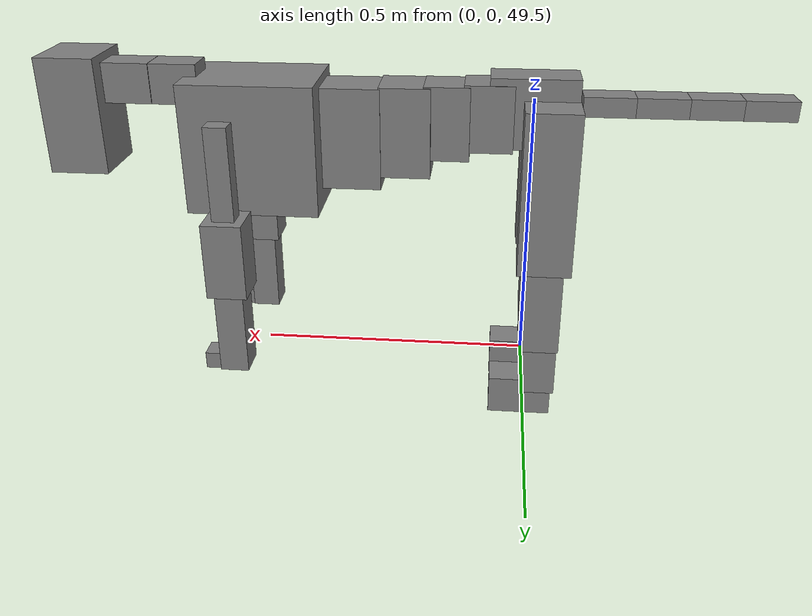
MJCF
<mujoco model="dog">

    <default>
        <joint armature="0.02" stiffness="1" damping="0.2" limited="true"/>
        <geom condim="3" friction="1 0.05 0.05" margin="0.01"/>
        <motor ctrllimited="true" ctrlrange="-1.0 1.0" forcelimited="true" gear="50"/>
    </default>

    <compiler inertiafromgeom="true" angle="radian"/>

    <option timestep="0.016" iterations="50" tolerance="1e-10" solver="Newton" jacobian="dense" cone="pyramidal"/>

    <size nconmax="20000" njmax="60000" nstack="5000000"/>
    <visual>
        <map force="0.1" zfar="30"/>
        <rgba haze="0.15 0.25 0.35 1"/>
        <quality shadowsize="2048"/>
        <global offwidth="800" offheight="800"/>
    </visual>

    <asset>
        <texture type="skybox" builtin="gradient" rgb1="0.3 0.5 0.7" rgb2="0 0 0" width="512" height="512"/>
        <texture name="texplane" type="2d" builtin="checker" rgb1=".2 .3 .4" rgb2=".1 0.15 0.2" width="512" height="512"
                 mark="cross" markrgb=".8 .8 .8"/>
        <texture name="texgeom" type="cube" builtin="flat" mark="cross" width="127" height="1278" rgb1="0.8 0.6 0.4"
                 rgb2="0.8 0.6 0.4" markrgb="1 1 1" random="0.01"/>

        <material name="matplane" reflectance="0.3" texture="texplane" texrepeat="1 1" texuniform="true"/>
        <material name="matgeom" texture="texgeom" texuniform="true" rgba="0.8 0.6 .4 1"/>
    </asset>

    <worldbody>
        <geom name="floor" pos="0 0 0" size="0 0 .25" type="plane" material="matplane" condim="3"/>

        <light directional="false" diffuse=".2 .2 .2" specular="0 0 0" pos="0 0 5" dir="0 0 -1" castshadow="false"/>
        <light mode="targetbodycom" target="torso" directional="false" diffuse=".8 .8 .8" specular="0.3 0.3 0.3"
               pos="0 0 4.0" dir="0 0 -1"/>

        <body name="root" pos="0 0 50">
            <freejoint name="root_1"/>
            <geom type="box" pos="0 0 -0.02" size="0.0774  0.0358  0.063" density="2030"/>

            <body name="spine1" pos="0.054 0 0">
                <joint name="spine1_y" axis="0 1 0" range="0 0.7" limited="true"/>
                <geom type="box" pos="0.02375 0 -0.03" size="0.04375  0.0375  0.05985" density="2030"/>

                <body name="spine2" pos="0.0612 0 0">
                    <joint name="spine2_y" axis="0 1 0" range="-0.15 0.15" limited="true"/>
                    <geom type="box" pos="0.03555  0  -0.04" size="0.04055  0.039  0.06615" density="2030"/>

                    <body name="spine3" pos="0.0730 0 0">
                        <joint name="spine3_y" axis="0 1 0" range="-0.15 0.15" limited="true"/>
                        <geom type="box" pos="0.03555  0  -0.057" size="0.04555  0.0445  0.081" density="2030"/>

                        <body name="spine4" pos="0.0780 0 0">
                            <joint name="spine4_y" axis="0 1 0" range="-0.15 0.15" limited="true"/>
                            <geom type="box" pos="0.05265  0  -0.07" size="0.05265  0.045  0.09135" density="2030"/>

                            <body name="torso" pos="0.1082 0 0">
                                <joint name="torso_y" axis="0 1 0" range="-0.15 0.15" limited="true"/>
                                <geom type="box" pos="0.11925  0  -0.085" size="0.11925  0.085  0.11745"
                                      density="2030"/>

                                <body name="neck1" pos="0.2160  0   0.0180">
                                    <joint name="neck1_y" axis="0 1 0" range="-1.2  -1" limited="true"/>
                                    <geom type="box" pos="0.0423  0  0" size="0.0423  0.03  0.036" density="2325"/>

                                    <body name="neck2" pos="0.0853  0  0">
                                        <joint name="neck2_y" axis="0 1 0" range="0.1  0" limited="true"/>
                                        <geom type="box" pos="0.0423  0  0" size="0.0423  0.03  0.036" density="2325"/>

                                        <body name="head" pos="0.0853  0  0">
                                            <joint name="head_y" axis="0 1 0" range="-0.3  -0.2" limited="true"/>
                                            <geom type="box" pos="0.0531  0  -0.055" size="0.0531  0.06  0.1044"
                                                  density="4030"/>

                                        </body>
                                    </body>
                                </body>

                                <body name="front_shoulder" pos="0.156  0   -0.0480">
                                    <joint name="front_shoulder_y" axis="0 1 0" range="-1 1.5" limited="true"/>
                                    <geom type="box" pos="0 0.13 -0.0716" size="0.0202  0.0172  0.0982" density="1158"/>
                                    <geom type="box" pos="0 -0.13 -0.0716" size="0.0202  0.0172  0.0982"
                                          density="1158"/>

                                    <body name="front_elbow" pos="0  0  -0.1431">
                                        <joint name="front_elbow_y" axis="0 1 0" range="-2 0" limited="true"/>
                                        <geom type="box" pos="0 0.13 -0.0701" size="0.0360  0.0368  0.0701"
                                              density="1081"/>
                                        <geom type="box" pos="0 -0.13 -0.0701" size="0.0360  0.0368  0.0701"
                                              density="1081"/>

                                        <body name="front_wrist" pos="0  0  -0.1403">
                                            <joint name="front_wrist_y" axis="0 1 0" range="-0.2 0" limited="true"/>
                                            <geom type="box" pos="0 0.13 -0.0699" size="0.0260  0.0289  0.0830"
                                                  density="1664"/>
                                            <geom type="box" pos="0 -0.13 -0.0699" size="0.0260  0.0289  0.0830"
                                                  density="1664"/>

                                            <body name="front_finger_end" pos="0  0  -0.1397">
                                                <joint name="front_finger_y" axis="0 1 0" range="-0.4 1"
                                                       limited="true"/>
                                                <geom type="box" pos="0.0198  0.13  -0.0005"
                                                      size="0.0362  0.0198  0.0155" density="1515"/>
                                                <geom type="box" pos="0.0198  -0.13  -0.0005"
                                                      size="0.0362  0.0198  0.0155" density="1515"/>

                                            </body>

                                        </body>
                                    </body>
                                </body>

                            </body>
                        </body>
                    </body>
                </body>
            </body>

            <body name="back_hip" pos="-0.03 0 -0.018">
                <joint name="back_hip_y" axis="0 1 0" range="-1.5 0.3" limited="true"/>
                <geom type="box" pos="0 0.07 -0.1259" size="0.0483  0.0379  0.1487" density="1154"/>
                <geom type="box" pos="0 -0.07 -0.1259" size="0.0483  0.0379  0.1487" density="1154"/>

                <body name="back_knee" pos="0  0  -0.2518">
                    <joint name="back_knee_y" axis="0 1 0" range="0 2.8" limited="true"/>
                    <geom type="box" pos="0 0.07 -0.0823" size="0.0351  0.0346  0.0979" density="1227"/>
                    <geom type="box" pos="0 -0.07 -0.0823" size="0.0351  0.0346  0.0979" density="1227"/>

                    <body name="back_ankle" pos="0  0  -0.1647">
                        <joint name="back_ankle_y" axis="0 1 0" range="-2.2 0" limited="true"/>
                        <geom type="box" pos="0 0.07 -0.0469" size="0.0324  0.0324  0.0581" density="1284"/>
                        <geom type="box" pos="0 -0.07 -0.0469" size="0.0324  0.0324  0.0581" density="1284"/>

                        <body name="back_toe_end" pos="0  0  -0.0938">
                            <joint name="back_toe_y" axis="0 1 0" range="-0.4 1" limited="true"/>
                            <geom type="box" pos="0.0315  0.07  -0.0210" size="0.0577  0.0315  0.0360" density="1515"/>
                            <geom type="box" pos="0.0315  -0.07  -0.0210" size="0.0577  0.0315  0.0360" density="1515"/>

                        </body>
                    </body>
                </body>
            </body>

            <body name="tail1" pos="-0.074 0 -0.006">
                <joint name="tail1_y" axis="0 1 0" range="-0.2 0.2" limited="true"/>
                <geom type="box" pos="-0.0536  0  0" size="0.045  0.025  0.0175" density="1587"/>

                <body name="tail2" pos="-0.09 0 0">
                    <joint name="tail2_y" axis="0 1 0" range="-0.2 0.2" limited="true"/>
                    <geom type="box" pos="-0.0536  0  0" size="0.045  0.025  0.0175" density="1587"/>

                    <body name="tail3" pos="-0.09 0 0">
                        <joint name="tail3_y" axis="0 1 0" range="-0.2 0.2" limited="true"/>
                        <geom type="box" pos="-0.0536  0  0" size="0.045  0.025  0.0175" density="1587"/>

                        <body name="tail4" pos="-0.09 0 0">
                            <joint name="tail4_y" axis="0 1 0" range="-0.2 0.2" limited="true"/>
                            <geom type="box" pos="-0.0536  0  0" size="0.045  0.025  0.0175" density="1587"/>

                        </body>
                    </body>
                </body>
            </body>
        </body>
    </worldbody>

    <actuator>
        <motor joint="spine1_y" forcerange="-150 150     "/>
        <motor joint="spine2_y" forcerange="-150 150     "/>
        <motor joint="spine3_y" forcerange="-150 150     "/>
        <motor joint="spine4_y" forcerange="-150 150     "/>
        <motor joint="torso_y" forcerange="-150 150     "/>
        <motor joint="neck1_y" forcerange="-100 100       "/>
        <motor joint="neck2_y" forcerange="-100 100       "/>
        <motor joint="head_y" forcerange="-150 150       "/>
        <motor joint="front_shoulder_y" forcerange="-103.08 111.85"/>
        <motor joint="front_elbow_y" forcerange="-172.74 195.08"/>
        <motor joint="front_wrist_y" forcerange="-86.84 144.15"/>
        <motor joint="front_finger_y" forcerange="-37.60 27.83"/>
        <motor joint="back_hip_y" forcerange="-396.29 308.59"/>
        <motor joint="back_knee_y" forcerange="-338.49 365.12"/>
        <motor joint="back_angle_y" forcerange="-231.71 186.34"/>
        <motor joint="back_toe_y" forcerange="-129.29 42.67"/>
        <motor joint="tail1_y" forcerange="-50 50     "/>
        <motor joint="tail2_y" forcerange="-50 50     "/>
        <motor joint="tail3_y" forcerange="-50 50     "/>
        <motor joint="tail4_y" forcerange="-50 50     "/>
    </actuator>
</mujoco>
